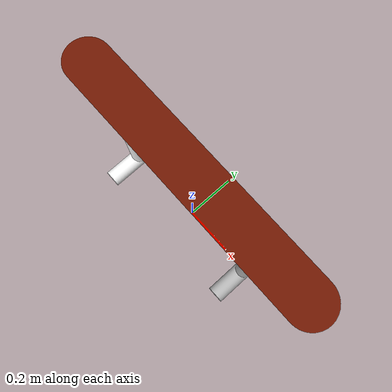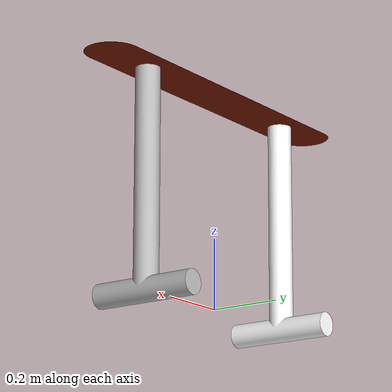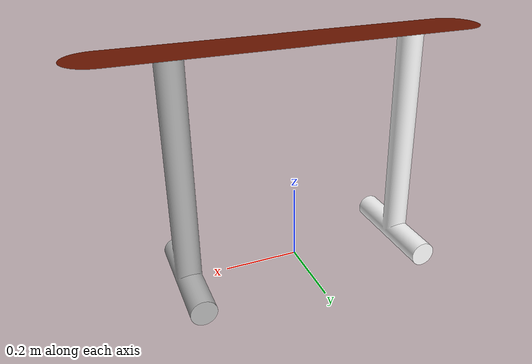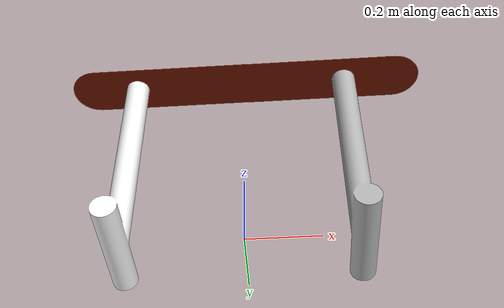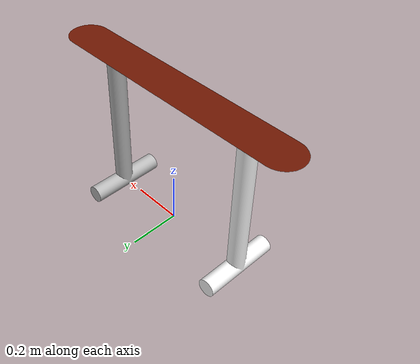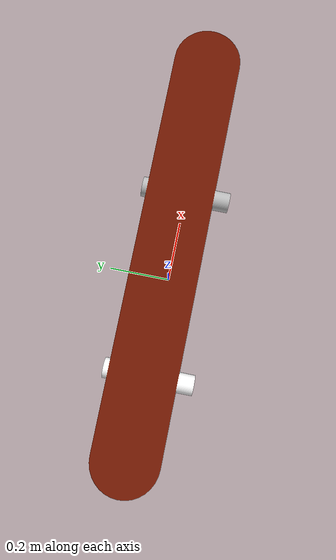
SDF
<?xml version="1.0" ?>
<sdf version="1.5">
  <model name="path_marker">
    <static>true</static>
    <link name="base_link">

      <collision name="collision">
        <pose>0 0 0 0 0 0</pose>
        <geometry>
          <mesh>
            <uri>model://path_marker/meshes/path_marker.dae</uri>
          </mesh>
        </geometry>
      </collision>

      <visual name="visual">
        <cast_shadows>true</cast_shadows>
        <pose>0 0 0 0 0 0</pose>
        <geometry>
          <mesh>
            <uri>model://path_marker/meshes/path_marker.dae</uri>
          </mesh>
        </geometry>
      </visual>
    </link>
  </model>
</sdf>
